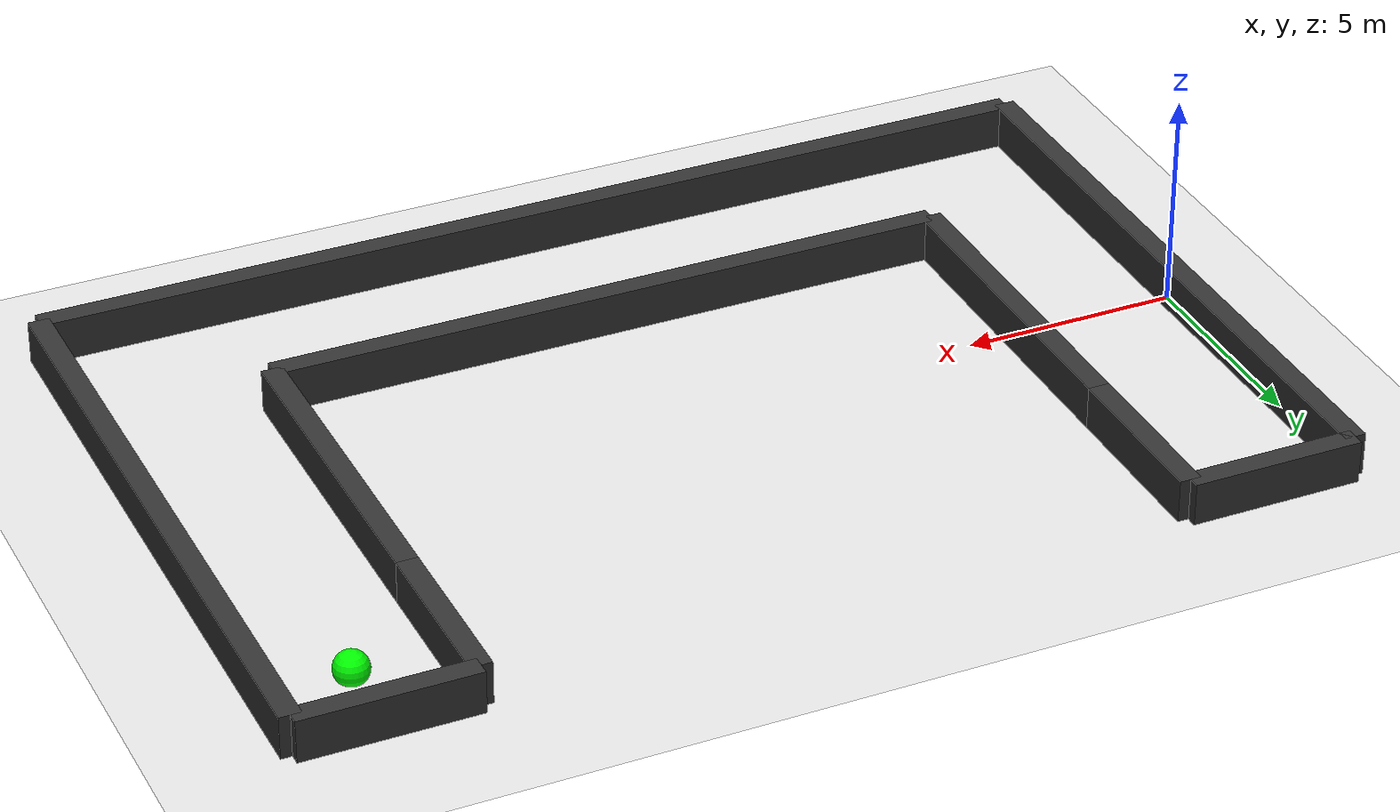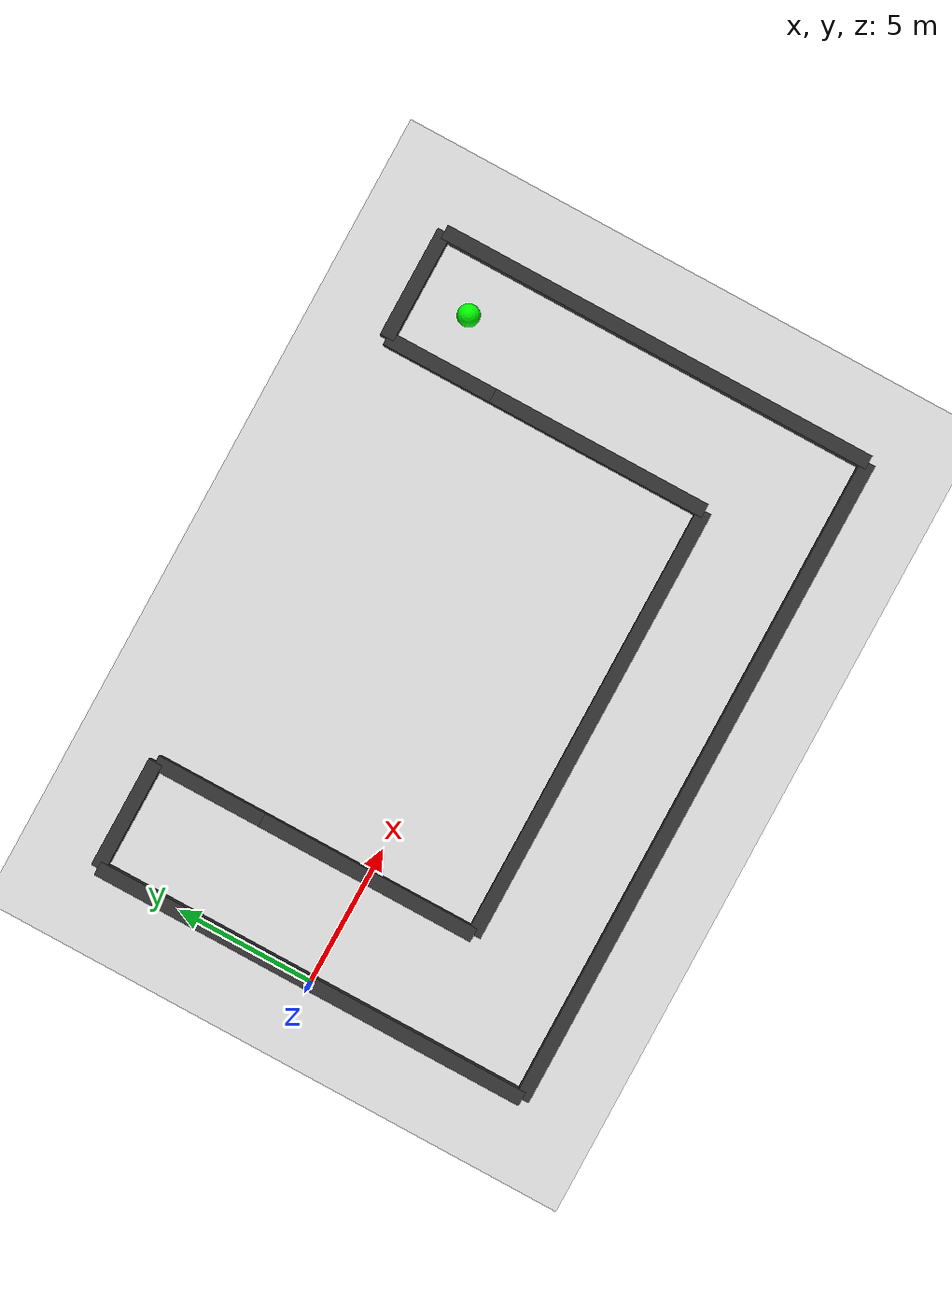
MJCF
<mujoco model="U_Shape_Corridor_Fixed">

    <option timestep="0.01" gravity="0 0 -9.81"/>

    <visual>
        <headlight diffuse="0.7 0.7 0.7"
                   ambient="0.3 0.3 0.3"/>
        <global azimuth="130"
                elevation="-25"/>
    </visual>

    <worldbody>

        <!-- FLOOR -->

        <geom name="floor"
              type="plane"
              pos="12 0 0"
              size="30 20 0.1"
              rgba="0.9 0.9 0.9 1"/>

        <!-- OUTER WALL -->

        <!-- cạnh trái -->
        <geom type="box"
              pos="0 0 0.5"
              size="0.25 8 0.5"
              rgba="0.2 0.2 0.2 1"/>

        <!-- cạnh phải -->
        <geom type="box"
              pos="24 0 0.5"
              size="0.25 8 0.5"
              rgba="0.2 0.2 0.2 1"/>

        <!-- đáy -->
        <geom type="box"
              pos="12 -8 0.5"
              size="12 0.25 0.5"
              rgba="0.2 0.2 0.2 1"/>

        <!-- chặn đầu trái -->
        <geom type="box"
              pos="2 8 0.5"
              size="2 0.25 0.5"
              rgba="0.2 0.2 0.2 1"/>

        <!-- chặn đầu phải -->
        <geom type="box"
              pos="22 8 0.5"
              size="2 0.25 0.5"
              rgba="0.2 0.2 0.2 1"/>

        <!-- INNER WALL -->

        <!-- cạnh trái trong -->
        <geom type="box"
              pos="4 0 0.5"
              size="0.25 4 0.5"
              rgba="0.2 0.2 0.2 1"/>

        <!-- cạnh phải trong -->
        <geom type="box"
              pos="20 0 0.5"
              size="0.25 4 0.5"
              rgba="0.2 0.2 0.2 1"/>

        <!-- đáy trong -->
        <geom type="box"
              pos="12 -4 0.5"
              size="8 0.25 0.5"
              rgba="0.2 0.2 0.2 1"/>

        <!-- chặn đầu trái trong -->
        <geom type="box"
              pos="4 6 0.5"
              size="0.25 2 0.5"
              rgba="0.2 0.2 0.2 1"/>

        <!-- chặn đầu phải trong -->
        <geom type="box"
              pos="20 6 0.5"
              size="0.25 2 0.5"
              rgba="0.2 0.2 0.2 1"/>

        <!-- GOAL -->

        <body name="goal"
              pos="22 6 0.2"
              mocap="true">

            <site name="goal_site"
                  type="sphere"
                  size="0.4"
                  rgba="0 1 0 1"/>
        </body>

    </worldbody>

</mujoco>
